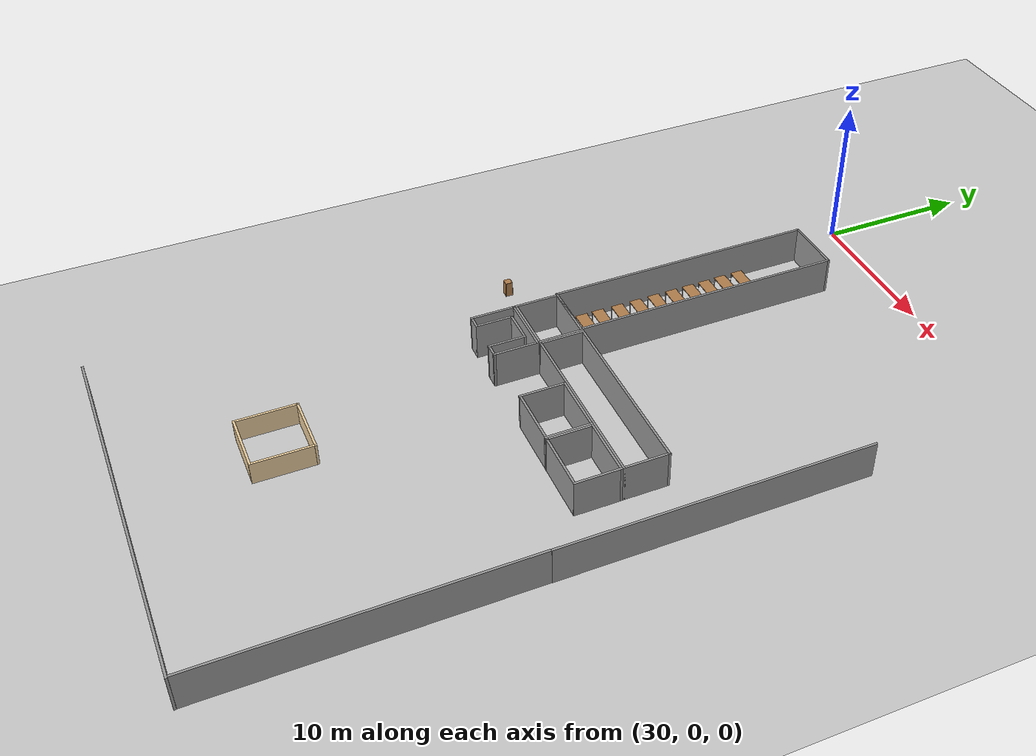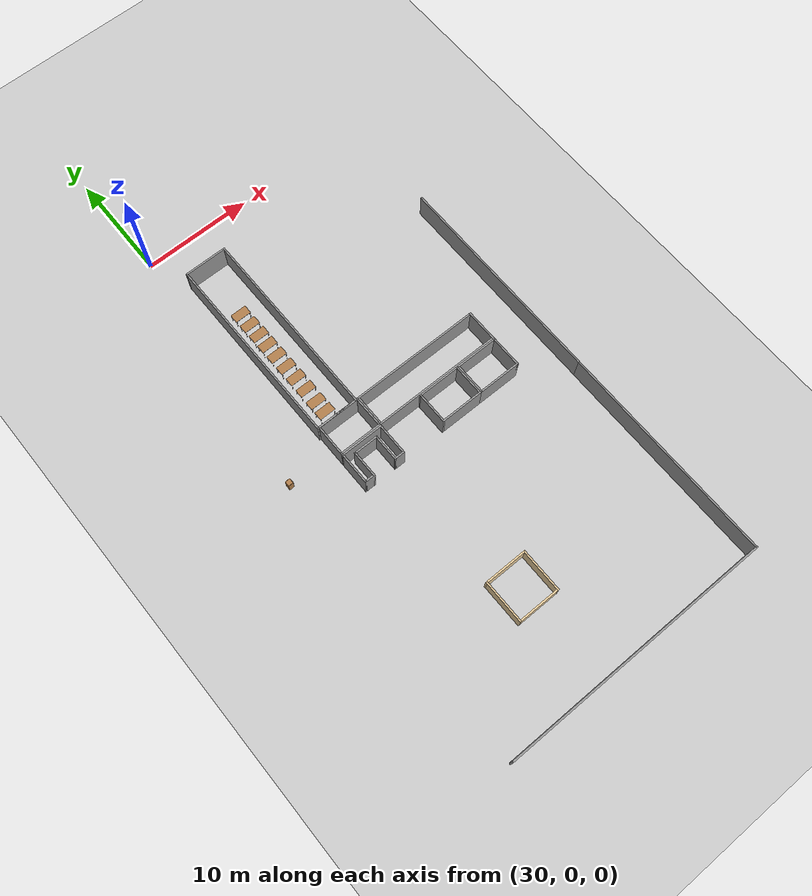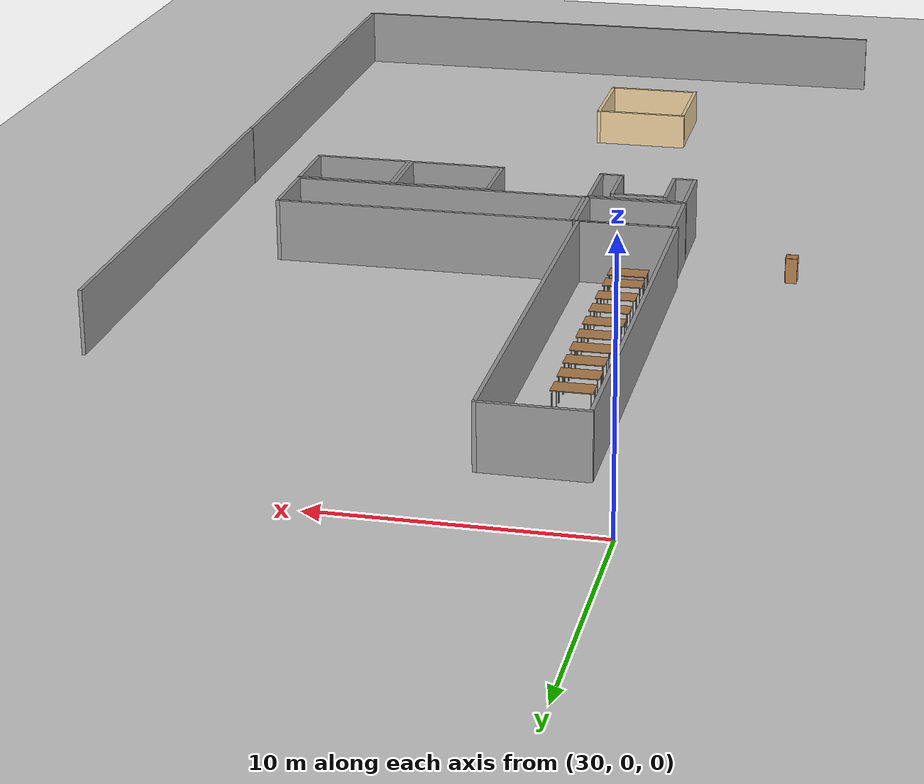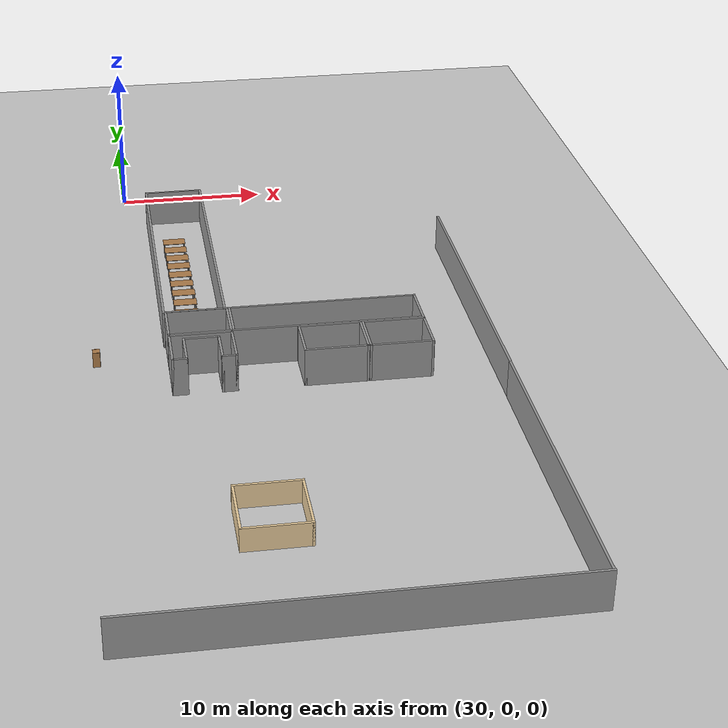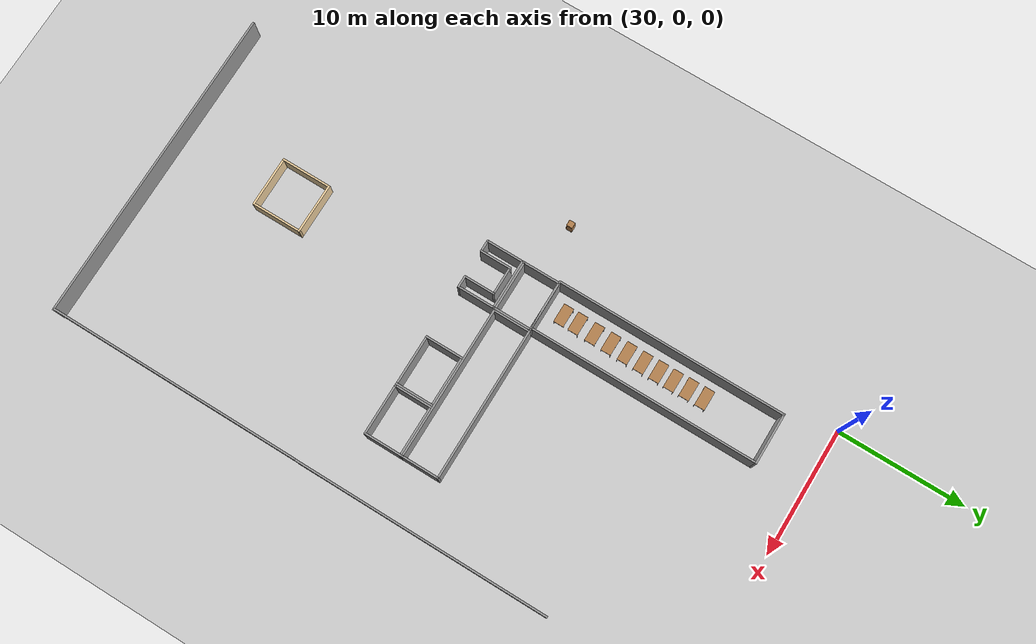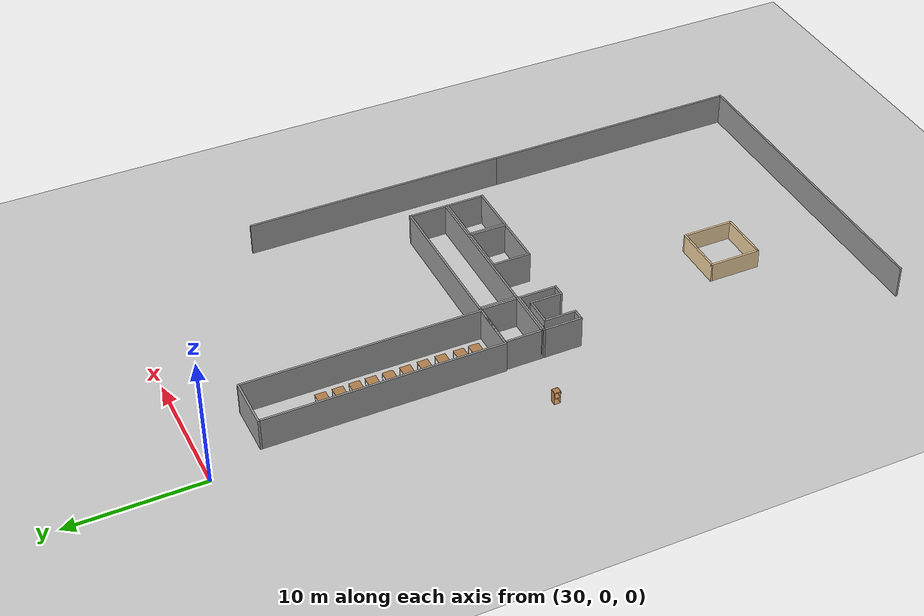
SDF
<sdf version="1.6">
 <world name="default">
  <model name="ground_plane">
   <static>1</static>
   <link name="link">
    <collision name="collision">
     <geometry><plane><normal>0 0 1</normal><size>105 105</size></plane></geometry>
     <surface>
      <contact><collide_bitmask>65535</collide_bitmask></contact>
      <friction><ode><mu>100</mu><mu2>50</mu2></ode></friction>
     </surface>
    </collision>
    <visual name="visual">
     <cast_shadows>0</cast_shadows>
     <geometry><plane><normal>0 0 1</normal><size>105 105</size></plane></geometry>
     <material>
      <script><uri>file://media/materials/scripts/gazebo.material</uri><name>Gazebo/Grey</name></script>
     </material>
    </visual>
   </link>
  </model>
  <model name="wall_v20m_3">
   <pose>51.4198 -20.719 0 0 -0 0</pose>
   <link name="Wall_35">
    <collision name="Wall_35_Collision">
     <geometry><box><size>20 0.15 2.5</size></box></geometry>
     <pose>0 0 1.25 0 -0 0</pose>
    </collision>
    <visual name="Wall_35_Visual">
     <pose>0 0 1.25 0 -0 0</pose>
     <geometry><box><size>20 0.15 2.5</size></box></geometry>
     <material>
      <script><uri>file://media/materials/scripts/gazebo.material</uri><name>Gazebo/Grey</name></script>
      <ambient>1 1 1 1</ambient>
     </material>
     <meta><layer>0</layer></meta>
    </visual>
    <pose>0 -0 0 0 -0 -1.5708</pose>
   </link>
   <static>1</static>
  </model>
  <model name="base3x4_25">
   <pose>33.5003 -23.2296 0 0 -0 0</pose>
   <link name="Wall_18">
    <collision name="Wall_18_Collision">
     <geometry><box><size>3 0.15 2.5</size></box></geometry>
     <pose>0 0 1.25 0 -0 0</pose>
    </collision>
    <visual name="Wall_18_Visual">
     <pose>0 0 1.25 0 -0 0</pose>
     <geometry><box><size>3 0.15 2.5</size></box></geometry>
     <material>
      <script><uri>file://media/materials/scripts/gazebo.material</uri><name>Gazebo/Grey</name></script>
      <ambient>1 1 1 1</ambient>
     </material>
     <meta><layer>0</layer></meta>
    </visual>
    <pose>-1.925 -0 0 0 -0 -1.5708</pose>
   </link>
   <link name="Wall_19">
    <collision name="Wall_19_Collision">
     <geometry><box><size>4 0.15 2.5</size></box></geometry>
     <pose>0 0 1.25 0 -0 0</pose>
    </collision>
    <visual name="Wall_19_Visual">
     <pose>0 0 1.25 0 -0 0</pose>
     <geometry><box><size>4 0.15 2.5</size></box></geometry>
     <material>
      <script><uri>file://media/materials/scripts/gazebo.material</uri><name>Gazebo/Grey</name></script>
      <ambient>1 1 1 1</ambient>
     </material>
     <meta><layer>0</layer></meta>
    </visual>
    <pose>-0 -1.425 0 0 -0 0</pose>
   </link>
   <link name="Wall_20">
    <collision name="Wall_20_Collision">
     <geometry><box><size>3 0.15 2.5</size></box></geometry>
     <pose>0 0 1.25 0 -0 0</pose>
    </collision>
    <visual name="Wall_20_Visual">
     <pose>0 0 1.25 0 -0 0</pose>
     <geometry><box><size>3 0.15 2.5</size></box></geometry>
     <material>
      <script><uri>file://media/materials/scripts/gazebo.material</uri><name>Gazebo/Grey</name></script>
      <ambient>1 1 1 1</ambient>
     </material>
     <meta><layer>0</layer></meta>
    </visual>
    <pose>1.925 -0 0 0 -0 1.5708</pose>
   </link>
   <link name="Wall_21">
    <collision name="Wall_21_Collision">
     <geometry><box><size>4 0.15 2.5</size></box></geometry>
     <pose>0 0 1.25 0 -0 0</pose>
    </collision>
    <visual name="Wall_21_Visual">
     <pose>0 0 1.25 0 -0 0</pose>
     <geometry><box><size>4 0.15 2.5</size></box></geometry>
     <material>
      <script><uri>file://media/materials/scripts/gazebo.material</uri><name>Gazebo/Grey</name></script>
      <ambient>1 1 1 1</ambient>
     </material>
     <meta><layer>0</layer></meta>
    </visual>
    <pose>-0 1.425 0 0 -0 3.14159</pose>
   </link>
   <static>1</static>
  </model>
  <model name="base3x12">
   <pose>41.5026 -23.2294 0 0 -0 0</pose>
   <link name="Wall_0">
    <collision name="Wall_0_Collision">
     <geometry><box><size>3 0.15 2.5</size></box></geometry>
     <pose>0 0 1.25 0 -0 0</pose>
    </collision>
    <visual name="Wall_0_Visual">
     <pose>0 0 1.25 0 -0 0</pose>
     <geometry><box><size>3 0.15 2.5</size></box></geometry>
     <material>
      <script><uri>file://media/materials/scripts/gazebo.material</uri><name>Gazebo/Grey</name></script>
      <ambient>1 1 1 1</ambient>
     </material>
     <meta><layer>0</layer></meta>
    </visual>
    <pose>-5.925 0 0 0 -0 -1.5708</pose>
   </link>
   <link name="Wall_1">
    <collision name="Wall_1_Collision">
     <geometry><box><size>12 0.15 2.5</size></box></geometry>
     <pose>0 0 1.25 0 -0 0</pose>
    </collision>
    <visual name="Wall_1_Visual">
     <pose>0 0 1.25 0 -0 0</pose>
     <geometry><box><size>12 0.15 2.5</size></box></geometry>
     <material>
      <script><uri>file://media/materials/scripts/gazebo.material</uri><name>Gazebo/Grey</name></script>
      <ambient>1 1 1 1</ambient>
     </material>
     <meta><layer>0</layer></meta>
    </visual>
    <pose>0 -1.425 0 0 -0 0</pose>
   </link>
   <link name="Wall_2">
    <collision name="Wall_2_Collision">
     <geometry><box><size>3 0.15 2.5</size></box></geometry>
     <pose>0 0 1.25 0 -0 0</pose>
    </collision>
    <visual name="Wall_2_Visual">
     <pose>0 0 1.25 0 -0 0</pose>
     <geometry><box><size>3 0.15 2.5</size></box></geometry>
     <material>
      <script><uri>file://media/materials/scripts/gazebo.material</uri><name>Gazebo/Grey</name></script>
      <ambient>1 1 1 1</ambient>
     </material>
     <meta><layer>0</layer></meta>
    </visual>
    <pose>5.925 0 0 0 -0 1.5708</pose>
   </link>
   <link name="Wall_3">
    <collision name="Wall_3_Collision">
     <geometry><box><size>12 0.15 2.5</size></box></geometry>
     <pose>0 0 1.25 0 -0 0</pose>
    </collision>
    <visual name="Wall_3_Visual">
     <pose>0 0 1.25 0 -0 0</pose>
     <geometry><box><size>12 0.15 2.5</size></box></geometry>
     <material>
      <script><uri>file://media/materials/scripts/gazebo.material</uri><name>Gazebo/Grey</name></script>
      <ambient>1 1 1 1</ambient>
     </material>
     <meta><layer>0</layer></meta>
    </visual>
    <pose>0 1.425 0 0 -0 3.14159</pose>
   </link>
   <static>1</static>
  </model>
  <model name="base18x4_5">
   <pose>33.3746 -12.8976 0 0 -0 0</pose>
   <link name="Wall_6">
    <collision name="Wall_6_Collision">
     <geometry><box><size>18 0.15 2.5</size></box></geometry>
     <pose>0 0 1.25 0 -0 0</pose>
    </collision>
    <visual name="Wall_6_Visual">
     <pose>0 0 1.25 0 -0 0</pose>
     <geometry><box><size>18 0.15 2.5</size></box></geometry>
     <material>
      <script><uri>file://media/materials/scripts/gazebo.material</uri><name>Gazebo/Grey</name></script>
      <ambient>1 1 1 1</ambient>
     </material>
     <meta><layer>0</layer></meta>
    </visual>
    <pose>-1.925 0 0 0 -0 -1.5708</pose>
   </link>
   <link name="Wall_7">
    <collision name="Wall_7_Collision">
     <geometry><box><size>4 0.15 2.5</size></box></geometry>
     <pose>0 0 1.25 0 -0 0</pose>
    </collision>
    <visual name="Wall_7_Visual">
     <pose>0 0 1.25 0 -0 0</pose>
     <geometry><box><size>4 0.15 2.5</size></box></geometry>
     <material>
      <script><uri>file://media/materials/scripts/gazebo.material</uri><name>Gazebo/Grey</name></script>
      <ambient>1 1 1 1</ambient>
     </material>
     <meta><layer>0</layer></meta>
    </visual>
    <pose>0 -8.925 0 0 -0 0</pose>
   </link>
   <link name="Wall_8">
    <collision name="Wall_8_Collision">
     <geometry><box><size>18 0.15 2.5</size></box></geometry>
     <pose>0 0 1.25 0 -0 0</pose>
    </collision>
    <visual name="Wall_8_Visual">
     <pose>0 0 1.25 0 -0 0</pose>
     <geometry><box><size>18 0.15 2.5</size></box></geometry>
     <material>
      <script><uri>file://media/materials/scripts/gazebo.material</uri><name>Gazebo/Grey</name></script>
      <ambient>1 1 1 1</ambient>
     </material>
     <meta><layer>0</layer></meta>
    </visual>
    <pose>1.925 0 0 0 -0 1.5708</pose>
   </link>
   <link name="Wall_9">
    <collision name="Wall_9_Collision">
     <geometry><box><size>4 0.15 2.5</size></box></geometry>
     <pose>0 0 1.25 0 -0 0</pose>
    </collision>
    <visual name="Wall_9_Visual">
     <pose>0 0 1.25 0 -0 0</pose>
     <geometry><box><size>4 0.15 2.5</size></box></geometry>
     <material>
      <script><uri>file://media/materials/scripts/gazebo.material</uri><name>Gazebo/Grey</name></script>
      <ambient>1 1 1 1</ambient>
     </material>
     <meta><layer>0</layer></meta>
    </visual>
    <pose>0 8.925 0 0 -0 3.14159</pose>
   </link>
   <static>1</static>
  </model>
  <model name="wall_v20m_8">
   <pose>51.4045 -40.7218 0 0 -0 0</pose>
   <link name="Wall_35">
    <collision name="Wall_35_Collision">
     <geometry><box><size>20 0.15 2.5</size></box></geometry>
     <pose>0 0 1.25 0 -0 0</pose>
    </collision>
    <visual name="Wall_35_Visual">
     <pose>0 0 1.25 0 -0 0</pose>
     <geometry><box><size>20 0.15 2.5</size></box></geometry>
     <material>
      <script><uri>file://media/materials/scripts/gazebo.material</uri><name>Gazebo/Grey</name></script>
      <ambient>1 1 1 1</ambient>
     </material>
     <meta><layer>0</layer></meta>
    </visual>
    <pose>0 -0 0 0 -0 -1.5708</pose>
   </link>
   <static>1</static>
  </model>
  <model name="wall_25m_9">
   <pose>39.0197 -50.7168 0 0 -0 0</pose>
   <link name="Wall_28">
    <collision name="Wall_28_Collision">
     <geometry><box><size>25 0.15 2.5</size></box></geometry>
     <pose>0 0 1.25 0 -0 0</pose>
    </collision>
    <visual name="Wall_28_Visual">
     <pose>0 0 1.25 0 -0 0</pose>
     <geometry><box><size>25 0.15 2.5</size></box></geometry>
     <material>
      <script><uri>file://media/materials/scripts/gazebo.material</uri><name>Gazebo/Grey</name></script>
      <ambient>1 1 1 1</ambient>
     </material>
     <meta><layer>0</layer></meta>
    </visual>
   </link>
   <static>1</static>
  </model>
  <model name="table">
   <static>1</static>
   <link name="link">
    <collision name="surface">
     <pose>0 0 1 0 -0 0</pose>
     <geometry><box><size>1.5 0.8 0.03</size></box></geometry>
     <surface><friction><ode><mu>0.6</mu><mu2>0.6</mu2></ode></friction></surface>
    </collision>
    <visual name="visual1">
     <pose>0 0 1 0 -0 0</pose>
     <geometry><box><size>1.5 0.8 0.03</size></box></geometry>
     <material>
      <script><uri>file://media/materials/scripts/gazebo.material</uri><name>Gazebo/Wood</name></script>
     </material>
    </visual>
    <collision name="front_left_leg">
     <pose>0.68 0.38 0.5 0 -0 0</pose>
     <geometry><cylinder><radius>0.02</radius><length>1</length></cylinder></geometry>
    </collision>
    <visual name="front_left_leg">
     <pose>0.68 0.38 0.5 0 -0 0</pose>
     <geometry><cylinder><radius>0.02</radius><length>1</length></cylinder></geometry>
     <material>
      <script><uri>file://media/materials/scripts/gazebo.material</uri><name>Gazebo/Grey</name></script>
     </material>
    </visual>
    <collision name="front_right_leg">
     <pose>0.68 -0.38 0.5 0 -0 0</pose>
     <geometry><cylinder><radius>0.02</radius><length>1</length></cylinder></geometry>
    </collision>
    <visual name="front_right_leg">
     <pose>0.68 -0.38 0.5 0 -0 0</pose>
     <geometry><cylinder><radius>0.02</radius><length>1</length></cylinder></geometry>
     <material>
      <script><uri>file://media/materials/scripts/gazebo.material</uri><name>Gazebo/Grey</name></script>
     </material>
    </visual>
    <collision name="back_right_leg">
     <pose>-0.68 -0.38 0.5 0 -0 0</pose>
     <geometry><cylinder><radius>0.02</radius><length>1</length></cylinder></geometry>
    </collision>
    <visual name="back_right_leg">
     <pose>-0.68 -0.38 0.5 0 -0 0</pose>
     <geometry><cylinder><radius>0.02</radius><length>1</length></cylinder></geometry>
     <material>
      <script><uri>file://media/materials/scripts/gazebo.material</uri><name>Gazebo/Grey</name></script>
     </material>
    </visual>
    <collision name="back_left_leg">
     <pose>-0.68 0.38 0.5 0 -0 0</pose>
     <geometry><cylinder><radius>0.02</radius><length>1</length></cylinder></geometry>
    </collision>
    <visual name="back_left_leg">
     <pose>-0.68 0.38 0.5 0 -0 0</pose>
     <geometry><cylinder><radius>0.02</radius><length>1</length></cylinder></geometry>
     <material>
      <script><uri>file://media/materials/scripts/gazebo.material</uri><name>Gazebo/Grey</name></script>
     </material>
    </visual>
   </link>
   <pose>33.0718 -20.4788 0 0 -0 0</pose>
  </model>
  <model name="table_0">
   <static>1</static>
   <link name="link">
    <collision name="surface">
     <pose>0 0 1 0 -0 0</pose>
     <geometry><box><size>1.5 0.8 0.03</size></box></geometry>
     <surface><friction><ode><mu>0.6</mu><mu2>0.6</mu2></ode></friction></surface>
    </collision>
    <visual name="visual1">
     <pose>0 0 1 0 -0 0</pose>
     <geometry><box><size>1.5 0.8 0.03</size></box></geometry>
     <material>
      <script><uri>file://media/materials/scripts/gazebo.material</uri><name>Gazebo/Wood</name></script>
     </material>
    </visual>
    <collision name="front_left_leg">
     <pose>0.68 0.38 0.5 0 -0 0</pose>
     <geometry><cylinder><radius>0.02</radius><length>1</length></cylinder></geometry>
    </collision>
    <visual name="front_left_leg">
     <pose>0.68 0.38 0.5 0 -0 0</pose>
     <geometry><cylinder><radius>0.02</radius><length>1</length></cylinder></geometry>
     <material>
      <script><uri>file://media/materials/scripts/gazebo.material</uri><name>Gazebo/Grey</name></script>
     </material>
    </visual>
    <collision name="front_right_leg">
     <pose>0.68 -0.38 0.5 0 -0 0</pose>
     <geometry><cylinder><radius>0.02</radius><length>1</length></cylinder></geometry>
    </collision>
    <visual name="front_right_leg">
     <pose>0.68 -0.38 0.5 0 -0 0</pose>
     <geometry><cylinder><radius>0.02</radius><length>1</length></cylinder></geometry>
     <material>
      <script><uri>file://media/materials/scripts/gazebo.material</uri><name>Gazebo/Grey</name></script>
     </material>
    </visual>
    <collision name="back_right_leg">
     <pose>-0.68 -0.38 0.5 0 -0 0</pose>
     <geometry><cylinder><radius>0.02</radius><length>1</length></cylinder></geometry>
    </collision>
    <visual name="back_right_leg">
     <pose>-0.68 -0.38 0.5 0 -0 0</pose>
     <geometry><cylinder><radius>0.02</radius><length>1</length></cylinder></geometry>
     <material>
      <script><uri>file://media/materials/scripts/gazebo.material</uri><name>Gazebo/Grey</name></script>
     </material>
    </visual>
    <collision name="back_left_leg">
     <pose>-0.68 0.38 0.5 0 -0 0</pose>
     <geometry><cylinder><radius>0.02</radius><length>1</length></cylinder></geometry>
    </collision>
    <visual name="back_left_leg">
     <pose>-0.68 0.38 0.5 0 -0 0</pose>
     <geometry><cylinder><radius>0.02</radius><length>1</length></cylinder></geometry>
     <material>
      <script><uri>file://media/materials/scripts/gazebo.material</uri><name>Gazebo/Grey</name></script>
     </material>
    </visual>
   </link>
   <pose>33.0586 -19.3271 0 0 -0 0</pose>
  </model>
  <model name="table_1">
   <static>1</static>
   <link name="link">
    <collision name="surface">
     <pose>0 0 1 0 -0 0</pose>
     <geometry><box><size>1.5 0.8 0.03</size></box></geometry>
     <surface><friction><ode><mu>0.6</mu><mu2>0.6</mu2></ode></friction></surface>
    </collision>
    <visual name="visual1">
     <pose>0 0 1 0 -0 0</pose>
     <geometry><box><size>1.5 0.8 0.03</size></box></geometry>
     <material>
      <script><uri>file://media/materials/scripts/gazebo.material</uri><name>Gazebo/Wood</name></script>
     </material>
    </visual>
    <collision name="front_left_leg">
     <pose>0.68 0.38 0.5 0 -0 0</pose>
     <geometry><cylinder><radius>0.02</radius><length>1</length></cylinder></geometry>
    </collision>
    <visual name="front_left_leg">
     <pose>0.68 0.38 0.5 0 -0 0</pose>
     <geometry><cylinder><radius>0.02</radius><length>1</length></cylinder></geometry>
     <material>
      <script><uri>file://media/materials/scripts/gazebo.material</uri><name>Gazebo/Grey</name></script>
     </material>
    </visual>
    <collision name="front_right_leg">
     <pose>0.68 -0.38 0.5 0 -0 0</pose>
     <geometry><cylinder><radius>0.02</radius><length>1</length></cylinder></geometry>
    </collision>
    <visual name="front_right_leg">
     <pose>0.68 -0.38 0.5 0 -0 0</pose>
     <geometry><cylinder><radius>0.02</radius><length>1</length></cylinder></geometry>
     <material>
      <script><uri>file://media/materials/scripts/gazebo.material</uri><name>Gazebo/Grey</name></script>
     </material>
    </visual>
    <collision name="back_right_leg">
     <pose>-0.68 -0.38 0.5 0 -0 0</pose>
     <geometry><cylinder><radius>0.02</radius><length>1</length></cylinder></geometry>
    </collision>
    <visual name="back_right_leg">
     <pose>-0.68 -0.38 0.5 0 -0 0</pose>
     <geometry><cylinder><radius>0.02</radius><length>1</length></cylinder></geometry>
     <material>
      <script><uri>file://media/materials/scripts/gazebo.material</uri><name>Gazebo/Grey</name></script>
     </material>
    </visual>
    <collision name="back_left_leg">
     <pose>-0.68 0.38 0.5 0 -0 0</pose>
     <geometry><cylinder><radius>0.02</radius><length>1</length></cylinder></geometry>
    </collision>
    <visual name="back_left_leg">
     <pose>-0.68 0.38 0.5 0 -0 0</pose>
     <geometry><cylinder><radius>0.02</radius><length>1</length></cylinder></geometry>
     <material>
      <script><uri>file://media/materials/scripts/gazebo.material</uri><name>Gazebo/Grey</name></script>
     </material>
    </visual>
   </link>
   <pose>33.0783 -17.9476 0 0 -0 0</pose>
  </model>
  <model name="table_2">
   <static>1</static>
   <link name="link">
    <collision name="surface">
     <pose>0 0 1 0 -0 0</pose>
     <geometry><box><size>1.5 0.8 0.03</size></box></geometry>
     <surface><friction><ode><mu>0.6</mu><mu2>0.6</mu2></ode></friction></surface>
    </collision>
    <visual name="visual1">
     <pose>0 0 1 0 -0 0</pose>
     <geometry><box><size>1.5 0.8 0.03</size></box></geometry>
     <material>
      <script><uri>file://media/materials/scripts/gazebo.material</uri><name>Gazebo/Wood</name></script>
     </material>
    </visual>
    <collision name="front_left_leg">
     <pose>0.68 0.38 0.5 0 -0 0</pose>
     <geometry><cylinder><radius>0.02</radius><length>1</length></cylinder></geometry>
    </collision>
    <visual name="front_left_leg">
     <pose>0.68 0.38 0.5 0 -0 0</pose>
     <geometry><cylinder><radius>0.02</radius><length>1</length></cylinder></geometry>
     <material>
      <script><uri>file://media/materials/scripts/gazebo.material</uri><name>Gazebo/Grey</name></script>
     </material>
    </visual>
    <collision name="front_right_leg">
     <pose>0.68 -0.38 0.5 0 -0 0</pose>
     <geometry><cylinder><radius>0.02</radius><length>1</length></cylinder></geometry>
    </collision>
    <visual name="front_right_leg">
     <pose>0.68 -0.38 0.5 0 -0 0</pose>
     <geometry><cylinder><radius>0.02</radius><length>1</length></cylinder></geometry>
     <material>
      <script><uri>file://media/materials/scripts/gazebo.material</uri><name>Gazebo/Grey</name></script>
     </material>
    </visual>
    <collision name="back_right_leg">
     <pose>-0.68 -0.38 0.5 0 -0 0</pose>
     <geometry><cylinder><radius>0.02</radius><length>1</length></cylinder></geometry>
    </collision>
    <visual name="back_right_leg">
     <pose>-0.68 -0.38 0.5 0 -0 0</pose>
     <geometry><cylinder><radius>0.02</radius><length>1</length></cylinder></geometry>
     <material>
      <script><uri>file://media/materials/scripts/gazebo.material</uri><name>Gazebo/Grey</name></script>
     </material>
    </visual>
    <collision name="back_left_leg">
     <pose>-0.68 0.38 0.5 0 -0 0</pose>
     <geometry><cylinder><radius>0.02</radius><length>1</length></cylinder></geometry>
    </collision>
    <visual name="back_left_leg">
     <pose>-0.68 0.38 0.5 0 -0 0</pose>
     <geometry><cylinder><radius>0.02</radius><length>1</length></cylinder></geometry>
     <material>
      <script><uri>file://media/materials/scripts/gazebo.material</uri><name>Gazebo/Grey</name></script>
     </material>
    </visual>
   </link>
   <pose>33.0811 -16.621 0 0 -0 0</pose>
  </model>
  <model name="table_3">
   <static>1</static>
   <link name="link">
    <collision name="surface">
     <pose>0 0 1 0 -0 0</pose>
     <geometry><box><size>1.5 0.8 0.03</size></box></geometry>
     <surface><friction><ode><mu>0.6</mu><mu2>0.6</mu2></ode></friction></surface>
    </collision>
    <visual name="visual1">
     <pose>0 0 1 0 -0 0</pose>
     <geometry><box><size>1.5 0.8 0.03</size></box></geometry>
     <material>
      <script><uri>file://media/materials/scripts/gazebo.material</uri><name>Gazebo/Wood</name></script>
     </material>
    </visual>
    <collision name="front_left_leg">
     <pose>0.68 0.38 0.5 0 -0 0</pose>
     <geometry><cylinder><radius>0.02</radius><length>1</length></cylinder></geometry>
    </collision>
    <visual name="front_left_leg">
     <pose>0.68 0.38 0.5 0 -0 0</pose>
     <geometry><cylinder><radius>0.02</radius><length>1</length></cylinder></geometry>
     <material>
      <script><uri>file://media/materials/scripts/gazebo.material</uri><name>Gazebo/Grey</name></script>
     </material>
    </visual>
    <collision name="front_right_leg">
     <pose>0.68 -0.38 0.5 0 -0 0</pose>
     <geometry><cylinder><radius>0.02</radius><length>1</length></cylinder></geometry>
    </collision>
    <visual name="front_right_leg">
     <pose>0.68 -0.38 0.5 0 -0 0</pose>
     <geometry><cylinder><radius>0.02</radius><length>1</length></cylinder></geometry>
     <material>
      <script><uri>file://media/materials/scripts/gazebo.material</uri><name>Gazebo/Grey</name></script>
     </material>
    </visual>
    <collision name="back_right_leg">
     <pose>-0.68 -0.38 0.5 0 -0 0</pose>
     <geometry><cylinder><radius>0.02</radius><length>1</length></cylinder></geometry>
    </collision>
    <visual name="back_right_leg">
     <pose>-0.68 -0.38 0.5 0 -0 0</pose>
     <geometry><cylinder><radius>0.02</radius><length>1</length></cylinder></geometry>
     <material>
      <script><uri>file://media/materials/scripts/gazebo.material</uri><name>Gazebo/Grey</name></script>
     </material>
    </visual>
    <collision name="back_left_leg">
     <pose>-0.68 0.38 0.5 0 -0 0</pose>
     <geometry><cylinder><radius>0.02</radius><length>1</length></cylinder></geometry>
    </collision>
    <visual name="back_left_leg">
     <pose>-0.68 0.38 0.5 0 -0 0</pose>
     <geometry><cylinder><radius>0.02</radius><length>1</length></cylinder></geometry>
     <material>
      <script><uri>file://media/materials/scripts/gazebo.material</uri><name>Gazebo/Grey</name></script>
     </material>
    </visual>
   </link>
   <pose>33.0661 -15.3115 0 0 -0 0</pose>
  </model>
  <model name="table_4">
   <static>1</static>
   <link name="link">
    <collision name="surface">
     <pose>0 0 1 0 -0 0</pose>
     <geometry><box><size>1.5 0.8 0.03</size></box></geometry>
     <surface><friction><ode><mu>0.6</mu><mu2>0.6</mu2></ode></friction></surface>
    </collision>
    <visual name="visual1">
     <pose>0 0 1 0 -0 0</pose>
     <geometry><box><size>1.5 0.8 0.03</size></box></geometry>
     <material>
      <script><uri>file://media/materials/scripts/gazebo.material</uri><name>Gazebo/Wood</name></script>
     </material>
    </visual>
    <collision name="front_left_leg">
     <pose>0.68 0.38 0.5 0 -0 0</pose>
     <geometry><cylinder><radius>0.02</radius><length>1</length></cylinder></geometry>
    </collision>
    <visual name="front_left_leg">
     <pose>0.68 0.38 0.5 0 -0 0</pose>
     <geometry><cylinder><radius>0.02</radius><length>1</length></cylinder></geometry>
     <material>
      <script><uri>file://media/materials/scripts/gazebo.material</uri><name>Gazebo/Grey</name></script>
     </material>
    </visual>
    <collision name="front_right_leg">
     <pose>0.68 -0.38 0.5 0 -0 0</pose>
     <geometry><cylinder><radius>0.02</radius><length>1</length></cylinder></geometry>
    </collision>
    <visual name="front_right_leg">
     <pose>0.68 -0.38 0.5 0 -0 0</pose>
     <geometry><cylinder><radius>0.02</radius><length>1</length></cylinder></geometry>
     <material>
      <script><uri>file://media/materials/scripts/gazebo.material</uri><name>Gazebo/Grey</name></script>
     </material>
    </visual>
    <collision name="back_right_leg">
     <pose>-0.68 -0.38 0.5 0 -0 0</pose>
     <geometry><cylinder><radius>0.02</radius><length>1</length></cylinder></geometry>
    </collision>
    <visual name="back_right_leg">
     <pose>-0.68 -0.38 0.5 0 -0 0</pose>
     <geometry><cylinder><radius>0.02</radius><length>1</length></cylinder></geometry>
     <material>
      <script><uri>file://media/materials/scripts/gazebo.material</uri><name>Gazebo/Grey</name></script>
     </material>
    </visual>
    <collision name="back_left_leg">
     <pose>-0.68 0.38 0.5 0 -0 0</pose>
     <geometry><cylinder><radius>0.02</radius><length>1</length></cylinder></geometry>
    </collision>
    <visual name="back_left_leg">
     <pose>-0.68 0.38 0.5 0 -0 0</pose>
     <geometry><cylinder><radius>0.02</radius><length>1</length></cylinder></geometry>
     <material>
      <script><uri>file://media/materials/scripts/gazebo.material</uri><name>Gazebo/Grey</name></script>
     </material>
    </visual>
   </link>
   <pose>33.068 -14.0197 0 0 -0 0</pose>
  </model>
  <model name="table_5">
   <static>1</static>
   <link name="link">
    <collision name="surface">
     <pose>0 0 1 0 -0 0</pose>
     <geometry><box><size>1.5 0.8 0.03</size></box></geometry>
     <surface><friction><ode><mu>0.6</mu><mu2>0.6</mu2></ode></friction></surface>
    </collision>
    <visual name="visual1">
     <pose>0 0 1 0 -0 0</pose>
     <geometry><box><size>1.5 0.8 0.03</size></box></geometry>
     <material>
      <script><uri>file://media/materials/scripts/gazebo.material</uri><name>Gazebo/Wood</name></script>
     </material>
    </visual>
    <collision name="front_left_leg">
     <pose>0.68 0.38 0.5 0 -0 0</pose>
     <geometry><cylinder><radius>0.02</radius><length>1</length></cylinder></geometry>
    </collision>
    <visual name="front_left_leg">
     <pose>0.68 0.38 0.5 0 -0 0</pose>
     <geometry><cylinder><radius>0.02</radius><length>1</length></cylinder></geometry>
     <material>
      <script><uri>file://media/materials/scripts/gazebo.material</uri><name>Gazebo/Grey</name></script>
     </material>
    </visual>
    <collision name="front_right_leg">
     <pose>0.68 -0.38 0.5 0 -0 0</pose>
     <geometry><cylinder><radius>0.02</radius><length>1</length></cylinder></geometry>
    </collision>
    <visual name="front_right_leg">
     <pose>0.68 -0.38 0.5 0 -0 0</pose>
     <geometry><cylinder><radius>0.02</radius><length>1</length></cylinder></geometry>
     <material>
      <script><uri>file://media/materials/scripts/gazebo.material</uri><name>Gazebo/Grey</name></script>
     </material>
    </visual>
    <collision name="back_right_leg">
     <pose>-0.68 -0.38 0.5 0 -0 0</pose>
     <geometry><cylinder><radius>0.02</radius><length>1</length></cylinder></geometry>
    </collision>
    <visual name="back_right_leg">
     <pose>-0.68 -0.38 0.5 0 -0 0</pose>
     <geometry><cylinder><radius>0.02</radius><length>1</length></cylinder></geometry>
     <material>
      <script><uri>file://media/materials/scripts/gazebo.material</uri><name>Gazebo/Grey</name></script>
     </material>
    </visual>
    <collision name="back_left_leg">
     <pose>-0.68 0.38 0.5 0 -0 0</pose>
     <geometry><cylinder><radius>0.02</radius><length>1</length></cylinder></geometry>
    </collision>
    <visual name="back_left_leg">
     <pose>-0.68 0.38 0.5 0 -0 0</pose>
     <geometry><cylinder><radius>0.02</radius><length>1</length></cylinder></geometry>
     <material>
      <script><uri>file://media/materials/scripts/gazebo.material</uri><name>Gazebo/Grey</name></script>
     </material>
    </visual>
   </link>
   <pose>33.0548 -12.7631 0 0 -0 0</pose>
  </model>
  <model name="table_6">
   <static>1</static>
   <link name="link">
    <collision name="surface">
     <pose>0 0 1 0 -0 0</pose>
     <geometry><box><size>1.5 0.8 0.03</size></box></geometry>
     <surface><friction><ode><mu>0.6</mu><mu2>0.6</mu2></ode></friction></surface>
    </collision>
    <visual name="visual1">
     <pose>0 0 1 0 -0 0</pose>
     <geometry><box><size>1.5 0.8 0.03</size></box></geometry>
     <material>
      <script><uri>file://media/materials/scripts/gazebo.material</uri><name>Gazebo/Wood</name></script>
     </material>
    </visual>
    <collision name="front_left_leg">
     <pose>0.68 0.38 0.5 0 -0 0</pose>
     <geometry><cylinder><radius>0.02</radius><length>1</length></cylinder></geometry>
    </collision>
    <visual name="front_left_leg">
     <pose>0.68 0.38 0.5 0 -0 0</pose>
     <geometry><cylinder><radius>0.02</radius><length>1</length></cylinder></geometry>
     <material>
      <script><uri>file://media/materials/scripts/gazebo.material</uri><name>Gazebo/Grey</name></script>
     </material>
    </visual>
    <collision name="front_right_leg">
     <pose>0.68 -0.38 0.5 0 -0 0</pose>
     <geometry><cylinder><radius>0.02</radius><length>1</length></cylinder></geometry>
    </collision>
    <visual name="front_right_leg">
     <pose>0.68 -0.38 0.5 0 -0 0</pose>
     <geometry><cylinder><radius>0.02</radius><length>1</length></cylinder></geometry>
     <material>
      <script><uri>file://media/materials/scripts/gazebo.material</uri><name>Gazebo/Grey</name></script>
     </material>
    </visual>
    <collision name="back_right_leg">
     <pose>-0.68 -0.38 0.5 0 -0 0</pose>
     <geometry><cylinder><radius>0.02</radius><length>1</length></cylinder></geometry>
    </collision>
    <visual name="back_right_leg">
     <pose>-0.68 -0.38 0.5 0 -0 0</pose>
     <geometry><cylinder><radius>0.02</radius><length>1</length></cylinder></geometry>
     <material>
      <script><uri>file://media/materials/scripts/gazebo.material</uri><name>Gazebo/Grey</name></script>
     </material>
    </visual>
    <collision name="back_left_leg">
     <pose>-0.68 0.38 0.5 0 -0 0</pose>
     <geometry><cylinder><radius>0.02</radius><length>1</length></cylinder></geometry>
    </collision>
    <visual name="back_left_leg">
     <pose>-0.68 0.38 0.5 0 -0 0</pose>
     <geometry><cylinder><radius>0.02</radius><length>1</length></cylinder></geometry>
     <material>
      <script><uri>file://media/materials/scripts/gazebo.material</uri><name>Gazebo/Grey</name></script>
     </material>
    </visual>
   </link>
   <pose>33.0586 -11.5759 0 0 -0 0</pose>
  </model>
  <model name="table_7">
   <static>1</static>
   <link name="link">
    <collision name="surface">
     <pose>0 0 1 0 -0 0</pose>
     <geometry><box><size>1.5 0.8 0.03</size></box></geometry>
     <surface><friction><ode><mu>0.6</mu><mu2>0.6</mu2></ode></friction></surface>
    </collision>
    <visual name="visual1">
     <pose>0 0 1 0 -0 0</pose>
     <geometry><box><size>1.5 0.8 0.03</size></box></geometry>
     <material>
      <script><uri>file://media/materials/scripts/gazebo.material</uri><name>Gazebo/Wood</name></script>
     </material>
    </visual>
    <collision name="front_left_leg">
     <pose>0.68 0.38 0.5 0 -0 0</pose>
     <geometry><cylinder><radius>0.02</radius><length>1</length></cylinder></geometry>
    </collision>
    <visual name="front_left_leg">
     <pose>0.68 0.38 0.5 0 -0 0</pose>
     <geometry><cylinder><radius>0.02</radius><length>1</length></cylinder></geometry>
     <material>
      <script><uri>file://media/materials/scripts/gazebo.material</uri><name>Gazebo/Grey</name></script>
     </material>
    </visual>
    <collision name="front_right_leg">
     <pose>0.68 -0.38 0.5 0 -0 0</pose>
     <geometry><cylinder><radius>0.02</radius><length>1</length></cylinder></geometry>
    </collision>
    <visual name="front_right_leg">
     <pose>0.68 -0.38 0.5 0 -0 0</pose>
     <geometry><cylinder><radius>0.02</radius><length>1</length></cylinder></geometry>
     <material>
      <script><uri>file://media/materials/scripts/gazebo.material</uri><name>Gazebo/Grey</name></script>
     </material>
    </visual>
    <collision name="back_right_leg">
     <pose>-0.68 -0.38 0.5 0 -0 0</pose>
     <geometry><cylinder><radius>0.02</radius><length>1</length></cylinder></geometry>
    </collision>
    <visual name="back_right_leg">
     <pose>-0.68 -0.38 0.5 0 -0 0</pose>
     <geometry><cylinder><radius>0.02</radius><length>1</length></cylinder></geometry>
     <material>
      <script><uri>file://media/materials/scripts/gazebo.material</uri><name>Gazebo/Grey</name></script>
     </material>
    </visual>
    <collision name="back_left_leg">
     <pose>-0.68 0.38 0.5 0 -0 0</pose>
     <geometry><cylinder><radius>0.02</radius><length>1</length></cylinder></geometry>
    </collision>
    <visual name="back_left_leg">
     <pose>-0.68 0.38 0.5 0 -0 0</pose>
     <geometry><cylinder><radius>0.02</radius><length>1</length></cylinder></geometry>
     <material>
      <script><uri>file://media/materials/scripts/gazebo.material</uri><name>Gazebo/Grey</name></script>
     </material>
    </visual>
   </link>
   <pose>33.0266 -10.3543 0 0 -0 0</pose>
  </model>
  <model name="table_8">
   <static>1</static>
   <link name="link">
    <collision name="surface">
     <pose>0 0 1 0 -0 0</pose>
     <geometry><box><size>1.5 0.8 0.03</size></box></geometry>
     <surface><friction><ode><mu>0.6</mu><mu2>0.6</mu2></ode></friction></surface>
    </collision>
    <visual name="visual1">
     <pose>0 0 1 0 -0 0</pose>
     <geometry><box><size>1.5 0.8 0.03</size></box></geometry>
     <material>
      <script><uri>file://media/materials/scripts/gazebo.material</uri><name>Gazebo/Wood</name></script>
     </material>
    </visual>
    <collision name="front_left_leg">
     <pose>0.68 0.38 0.5 0 -0 0</pose>
     <geometry><cylinder><radius>0.02</radius><length>1</length></cylinder></geometry>
    </collision>
    <visual name="front_left_leg">
     <pose>0.68 0.38 0.5 0 -0 0</pose>
     <geometry><cylinder><radius>0.02</radius><length>1</length></cylinder></geometry>
     <material>
      <script><uri>file://media/materials/scripts/gazebo.material</uri><name>Gazebo/Grey</name></script>
     </material>
    </visual>
    <collision name="front_right_leg">
     <pose>0.68 -0.38 0.5 0 -0 0</pose>
     <geometry><cylinder><radius>0.02</radius><length>1</length></cylinder></geometry>
    </collision>
    <visual name="front_right_leg">
     <pose>0.68 -0.38 0.5 0 -0 0</pose>
     <geometry><cylinder><radius>0.02</radius><length>1</length></cylinder></geometry>
     <material>
      <script><uri>file://media/materials/scripts/gazebo.material</uri><name>Gazebo/Grey</name></script>
     </material>
    </visual>
    <collision name="back_right_leg">
     <pose>-0.68 -0.38 0.5 0 -0 0</pose>
     <geometry><cylinder><radius>0.02</radius><length>1</length></cylinder></geometry>
    </collision>
    <visual name="back_right_leg">
     <pose>-0.68 -0.38 0.5 0 -0 0</pose>
     <geometry><cylinder><radius>0.02</radius><length>1</length></cylinder></geometry>
     <material>
      <script><uri>file://media/materials/scripts/gazebo.material</uri><name>Gazebo/Grey</name></script>
     </material>
    </visual>
    <collision name="back_left_leg">
     <pose>-0.68 0.38 0.5 0 -0 0</pose>
     <geometry><cylinder><radius>0.02</radius><length>1</length></cylinder></geometry>
    </collision>
    <visual name="back_left_leg">
     <pose>-0.68 0.38 0.5 0 -0 0</pose>
     <geometry><cylinder><radius>0.02</radius><length>1</length></cylinder></geometry>
     <material>
      <script><uri>file://media/materials/scripts/gazebo.material</uri><name>Gazebo/Grey</name></script>
     </material>
    </visual>
   </link>
   <pose>33.0125 -9.09753 0 0 -0 0</pose>
  </model>
  <model name="cabinet_4">
   <static>1</static>
   <link name="cabinet_bottom_plate">
    <inertial>
     <pose>0 0 -1 0 -0 0</pose>
     <inertia><ixx>2.05</ixx><ixy>0</ixy><ixz>0</ixz><iyy>2.05</iyy><iyz>0</iyz><izz>2.05</izz></inertia>
     <mass>25</mass>
    </inertial>
    <collision name="cabinet_bottom_plate_geom">
     <pose>0 0 0.01 0 -0 0</pose>
     <geometry><box><size>0.45 0.45 0.02</size></box></geometry>
    </collision>
    <visual name="cabinet_bottom_plate_geom_visual">
     <pose>0 0 0.01 0 -0 0</pose>
     <geometry><box><size>0.45 0.45 0.02</size></box></geometry>
     <material>
      <script><uri>file://media/materials/scripts/gazebo.material</uri><name>Gazebo/Wood</name></script>
     </material>
    </visual>
    <collision name="cabinet_bottom_plate_geom_cabinet_back_plate">
     <pose>0.235 0 0.51 0 -0 0</pose>
     <geometry><box><size>0.02 0.45 1.02</size></box></geometry>
    </collision>
    <visual name="cabinet_bottom_plate_geom_cabinet_back_plate_visual">
     <pose>0.235 0 0.51 0 -0 0</pose>
     <geometry><box><size>0.02 0.45 1.02</size></box></geometry>
     <material>
      <script><uri>file://media/materials/scripts/gazebo.material</uri><name>Gazebo/Wood</name></script>
     </material>
    </visual>
    <collision name="cabinet_bottom_plate_geom_cabinet_left_plate">
     <pose>0 0.235 0.51 0 -0 0</pose>
     <geometry><box><size>0.45 0.02 1.02</size></box></geometry>
    </collision>
    <visual name="cabinet_bottom_plate_geom_cabinet_left_plate_visual">
     <pose>0 0.235 0.51 0 -0 0</pose>
     <geometry><box><size>0.45 0.02 1.02</size></box></geometry>
     <material>
      <script><uri>file://media/materials/scripts/gazebo.material</uri><name>Gazebo/Wood</name></script>
     </material>
    </visual>
    <collision name="cabinet_bottom_plate_geom_cabinet_middle_plate">
     <pose>0 0 0.51 0 -0 0</pose>
     <geometry><box><size>0.45 0.45 0.02</size></box></geometry>
    </collision>
    <visual name="cabinet_bottom_plate_geom_cabinet_middle_plate_visual">
     <pose>0 0 0.51 0 -0 0</pose>
     <geometry><box><size>0.45 0.45 0.02</size></box></geometry>
     <material>
      <script><uri>file://media/materials/scripts/gazebo.material</uri><name>Gazebo/Wood</name></script>
     </material>
    </visual>
    <collision name="cabinet_bottom_plate_geom_cabinet_right_plate">
     <pose>0 -0.235 0.51 0 -0 0</pose>
     <geometry><box><size>0.45 0.02 1.02</size></box></geometry>
    </collision>
    <visual name="cabinet_bottom_plate_geom_cabinet_right_plate_visual">
     <pose>0 -0.235 0.51 0 -0 0</pose>
     <geometry><box><size>0.45 0.02 1.02</size></box></geometry>
     <material>
      <script><uri>file://media/materials/scripts/gazebo.material</uri><name>Gazebo/Wood</name></script>
     </material>
    </visual>
    <collision name="cabinet_bottom_plate_geom_cabinet_top_plate">
     <pose>0 0 1.01 0 -0 0</pose>
     <geometry><box><size>0.45 0.45 0.02</size></box></geometry>
    </collision>
    <visual name="cabinet_bottom_plate_geom_cabinet_top_plate_visual">
     <pose>0 0 1.01 0 -0 0</pose>
     <geometry><box><size>0.45 0.45 0.02</size></box></geometry>
     <material>
      <script><uri>file://media/materials/scripts/gazebo.material</uri><name>Gazebo/Wood</name></script>
     </material>
    </visual>
   </link>
   <pose>27.1129 -23.4747 0 0 -0 0</pose>
  </model>
  <model name="box4x4x1.5_3">
   <pose>35.7872 -41.5085 0 0 -0 0</pose>
   <link name="Wall_5">
    <collision name="Wall_5_Collision">
     <geometry><box><size>4 0.15 1.5</size></box></geometry>
     <pose>0 0 0.75 0 -0 0</pose>
    </collision>
    <visual name="Wall_5_Visual">
     <pose>0 0 0.75 0 -0 0</pose>
     <geometry><box><size>4 0.15 1.5</size></box></geometry>
     <material>
      <script><uri>file://media/materials/scripts/gazebo.material</uri><name>Gazebo/Grey</name></script>
      <ambient>0.921569 0.807843 0.615686 1</ambient>
     </material>
     <meta><layer>0</layer></meta>
    </visual>
    <pose>-1.925 -0 0 0 -0 -1.5708</pose>
   </link>
   <link name="Wall_6">
    <collision name="Wall_6_Collision">
     <geometry><box><size>4 0.15 1.5</size></box></geometry>
     <pose>0 0 0.75 0 -0 0</pose>
    </collision>
    <visual name="Wall_6_Visual">
     <pose>0 0 0.75 0 -0 0</pose>
     <geometry><box><size>4 0.15 1.5</size></box></geometry>
     <material>
      <script><uri>file://media/materials/scripts/gazebo.material</uri><name>Gazebo/Grey</name></script>
      <ambient>0.921569 0.807843 0.615686 1</ambient>
     </material>
     <meta><layer>0</layer></meta>
    </visual>
    <pose>0 -1.925 0 0 -0 0</pose>
   </link>
   <link name="Wall_7">
    <collision name="Wall_7_Collision">
     <geometry><box><size>4 0.15 1.5</size></box></geometry>
     <pose>0 0 0.75 0 -0 0</pose>
    </collision>
    <visual name="Wall_7_Visual">
     <pose>0 0 0.75 0 -0 0</pose>
     <geometry><box><size>4 0.15 1.5</size></box></geometry>
     <material>
      <script><uri>file://media/materials/scripts/gazebo.material</uri><name>Gazebo/Grey</name></script>
      <ambient>0.921569 0.807843 0.615686 1</ambient>
     </material>
     <meta><layer>0</layer></meta>
    </visual>
    <pose>1.925 -0 0 0 -0 1.5708</pose>
   </link>
   <link name="Wall_8">
    <collision name="Wall_8_Collision">
     <geometry><box><size>4 0.15 1.5</size></box></geometry>
     <pose>0 0 0.75 0 -0 0</pose>
    </collision>
    <visual name="Wall_8_Visual">
     <pose>0 0 0.75 0 -0 0</pose>
     <geometry><box><size>4 0.15 1.5</size></box></geometry>
     <material>
      <script><uri>file://media/materials/scripts/gazebo.material</uri><name>Gazebo/Grey</name></script>
      <ambient>0.921569 0.807843 0.615686 1</ambient>
     </material>
     <meta><layer>0</layer></meta>
    </visual>
    <pose>0 1.925 0 0 -0 3.14159</pose>
   </link>
   <static>1</static>
  </model>
  <model name="base3x4_9">
   <pose>45.5083 -26.2198 0 0 -0 0</pose>
   <link name="Wall_18">
    <collision name="Wall_18_Collision">
     <geometry><box><size>3 0.15 2.5</size></box></geometry>
     <pose>0 0 1.25 0 -0 0</pose>
    </collision>
    <visual name="Wall_18_Visual">
     <pose>0 0 1.25 0 -0 0</pose>
     <geometry><box><size>3 0.15 2.5</size></box></geometry>
     <material>
      <script><uri>file://media/materials/scripts/gazebo.material</uri><name>Gazebo/Grey</name></script>
      <ambient>1 1 1 1</ambient>
     </material>
     <meta><layer>0</layer></meta>
    </visual>
    <pose>-1.925 -0 0 0 -0 -1.5708</pose>
   </link>
   <link name="Wall_19">
    <collision name="Wall_19_Collision">
     <geometry><box><size>4 0.15 2.5</size></box></geometry>
     <pose>0 0 1.25 0 -0 0</pose>
    </collision>
    <visual name="Wall_19_Visual">
     <pose>0 0 1.25 0 -0 0</pose>
     <geometry><box><size>4 0.15 2.5</size></box></geometry>
     <material>
      <script><uri>file://media/materials/scripts/gazebo.material</uri><name>Gazebo/Grey</name></script>
      <ambient>1 1 1 1</ambient>
     </material>
     <meta><layer>0</layer></meta>
    </visual>
    <pose>-0 -1.425 0 0 -0 0</pose>
   </link>
   <link name="Wall_20">
    <collision name="Wall_20_Collision">
     <geometry><box><size>3 0.15 2.5</size></box></geometry>
     <pose>0 0 1.25 0 -0 0</pose>
    </collision>
    <visual name="Wall_20_Visual">
     <pose>0 0 1.25 0 -0 0</pose>
     <geometry><box><size>3 0.15 2.5</size></box></geometry>
     <material>
      <script><uri>file://media/materials/scripts/gazebo.material</uri><name>Gazebo/Grey</name></script>
      <ambient>1 1 1 1</ambient>
     </material>
     <meta><layer>0</layer></meta>
    </visual>
    <pose>1.925 -0 0 0 -0 1.5708</pose>
   </link>
   <link name="Wall_21">
    <collision name="Wall_21_Collision">
     <geometry><box><size>4 0.15 2.5</size></box></geometry>
     <pose>0 0 1.25 0 -0 0</pose>
    </collision>
    <visual name="Wall_21_Visual">
     <pose>0 0 1.25 0 -0 0</pose>
     <geometry><box><size>4 0.15 2.5</size></box></geometry>
     <material>
      <script><uri>file://media/materials/scripts/gazebo.material</uri><name>Gazebo/Grey</name></script>
      <ambient>1 1 1 1</ambient>
     </material>
     <meta><layer>0</layer></meta>
    </visual>
    <pose>-0 1.425 0 0 -0 3.14159</pose>
   </link>
   <static>1</static>
  </model>
  <model name="base3x4_12">
   <pose>41.5115 -26.2157 0 0 -0 0</pose>
   <link name="Wall_18">
    <collision name="Wall_18_Collision">
     <geometry><box><size>3 0.15 2.5</size></box></geometry>
     <pose>0 0 1.25 0 -0 0</pose>
    </collision>
    <visual name="Wall_18_Visual">
     <pose>0 0 1.25 0 -0 0</pose>
     <geometry><box><size>3 0.15 2.5</size></box></geometry>
     <material>
      <script><uri>file://media/materials/scripts/gazebo.material</uri><name>Gazebo/Grey</name></script>
      <ambient>1 1 1 1</ambient>
     </material>
     <meta><layer>0</layer></meta>
    </visual>
    <pose>-1.925 -0 0 0 -0 -1.5708</pose>
   </link>
   <link name="Wall_19">
    <collision name="Wall_19_Collision">
     <geometry><box><size>4 0.15 2.5</size></box></geometry>
     <pose>0 0 1.25 0 -0 0</pose>
    </collision>
    <visual name="Wall_19_Visual">
     <pose>0 0 1.25 0 -0 0</pose>
     <geometry><box><size>4 0.15 2.5</size></box></geometry>
     <material>
      <script><uri>file://media/materials/scripts/gazebo.material</uri><name>Gazebo/Grey</name></script>
      <ambient>1 1 1 1</ambient>
     </material>
     <meta><layer>0</layer></meta>
    </visual>
    <pose>-0 -1.425 0 0 -0 0</pose>
   </link>
   <link name="Wall_20">
    <collision name="Wall_20_Collision">
     <geometry><box><size>3 0.15 2.5</size></box></geometry>
     <pose>0 0 1.25 0 -0 0</pose>
    </collision>
    <visual name="Wall_20_Visual">
     <pose>0 0 1.25 0 -0 0</pose>
     <geometry><box><size>3 0.15 2.5</size></box></geometry>
     <material>
      <script><uri>file://media/materials/scripts/gazebo.material</uri><name>Gazebo/Grey</name></script>
      <ambient>1 1 1 1</ambient>
     </material>
     <meta><layer>0</layer></meta>
    </visual>
    <pose>1.925 -0 0 0 -0 1.5708</pose>
   </link>
   <link name="Wall_21">
    <collision name="Wall_21_Collision">
     <geometry><box><size>4 0.15 2.5</size></box></geometry>
     <pose>0 0 1.25 0 -0 0</pose>
    </collision>
    <visual name="Wall_21_Visual">
     <pose>0 0 1.25 0 -0 0</pose>
     <geometry><box><size>4 0.15 2.5</size></box></geometry>
     <material>
      <script><uri>file://media/materials/scripts/gazebo.material</uri><name>Gazebo/Grey</name></script>
      <ambient>1 1 1 1</ambient>
     </material>
     <meta><layer>0</layer></meta>
    </visual>
    <pose>-0 1.425 0 0 -0 3.14159</pose>
   </link>
   <static>1</static>
  </model>
  <model name="box_u_v4X3X2.5_8">
   <pose>33.5067 -26.2251 0 0 -0 0</pose>
   <link name="Wall_30">
    <collision name="Wall_30_Collision">
     <geometry><box><size>3 0.15 2.5</size></box></geometry>
     <pose>0 0 1.25 0 -0 0</pose>
    </collision>
    <visual name="Wall_30_Visual">
     <pose>0 0 1.25 0 -0 0</pose>
     <geometry><box><size>3 0.15 2.5</size></box></geometry>
     <material>
      <script><uri>file://media/materials/scripts/gazebo.material</uri><name>Gazebo/Grey</name></script>
      <ambient>1 1 1 1</ambient>
     </material>
     <meta><layer>0</layer></meta>
    </visual>
    <pose>-1.925 0 0 0 -0 -1.5708</pose>
   </link>
   <link name="Wall_32">
    <collision name="Wall_32_Collision">
     <geometry><box><size>4 0.15 2.5</size></box></geometry>
     <pose>0 0 1.25 0 -0 0</pose>
    </collision>
    <visual name="Wall_32_Visual">
     <pose>0 0 1.25 0 -0 0</pose>
     <geometry><box><size>4 0.15 2.5</size></box></geometry>
     <material>
      <script><uri>file://media/materials/scripts/gazebo.material</uri><name>Gazebo/Grey</name></script>
      <ambient>1 1 1 1</ambient>
     </material>
     <meta><layer>0</layer></meta>
    </visual>
    <pose>0 1.425 0 0 -0 0</pose>
   </link>
   <link name="Wall_33">
    <collision name="Wall_33_Collision">
     <geometry><box><size>3 0.15 2.5</size></box></geometry>
     <pose>0 0 1.25 0 -0 0</pose>
    </collision>
    <visual name="Wall_33_Visual">
     <pose>0 0 1.25 0 -0 0</pose>
     <geometry><box><size>3 0.15 2.5</size></box></geometry>
     <material>
      <script><uri>file://media/materials/scripts/gazebo.material</uri><name>Gazebo/Grey</name></script>
      <ambient>1 1 1 1</ambient>
     </material>
     <meta><layer>0</layer></meta>
    </visual>
    <pose>1.925 0 0 0 -0 -1.5708</pose>
   </link>
   <link name="Wall_34">
    <collision name="Wall_34_Collision">
     <geometry><box><size>1 0.15 2.5</size></box></geometry>
     <pose>0 0 1.25 0 -0 0</pose>
    </collision>
    <visual name="Wall_34_Visual">
     <pose>0 0 1.25 0 -0 0</pose>
     <geometry><box><size>1 0.15 2.5</size></box></geometry>
     <material>
      <script><uri>file://media/materials/scripts/gazebo.material</uri><name>Gazebo/Grey</name></script>
      <ambient>1 1 1 1</ambient>
     </material>
     <meta><layer>0</layer></meta>
    </visual>
    <pose>1.5 -1.425 0 0 -0 3.14159</pose>
   </link>
   <link name="Wall_35">
    <collision name="Wall_35_Collision">
     <geometry><box><size>2.5 0.15 2.5</size></box></geometry>
     <pose>0 0 1.25 0 -0 0</pose>
    </collision>
    <visual name="Wall_35_Visual">
     <pose>0 0 1.25 0 -0 0</pose>
     <geometry><box><size>2.5 0.15 2.5</size></box></geometry>
     <material>
      <script><uri>file://media/materials/scripts/gazebo.material</uri><name>Gazebo/Grey</name></script>
      <ambient>1 1 1 1</ambient>
     </material>
     <meta><layer>0</layer></meta>
    </visual>
    <pose>1.075 -0.25 0 0 -0 1.5708</pose>
   </link>
   <link name="Wall_37">
    <collision name="Wall_37_Collision">
     <geometry><box><size>1 0.15 2.5</size></box></geometry>
     <pose>0 0 1.25 0 -0 0</pose>
    </collision>
    <visual name="Wall_37_Visual">
     <pose>0 0 1.25 0 -0 0</pose>
     <geometry><box><size>1 0.15 2.5</size></box></geometry>
     <material>
      <script><uri>file://media/materials/scripts/gazebo.material</uri><name>Gazebo/Grey</name></script>
      <ambient>1 1 1 1</ambient>
     </material>
     <meta><layer>0</layer></meta>
    </visual>
    <pose>-1.5 -1.425 0 0 -0 0</pose>
   </link>
   <link name="Wall_38">
    <collision name="Wall_38_Collision">
     <geometry><box><size>2.5 0.15 2.5</size></box></geometry>
     <pose>0 0 1.25 0 -0 0</pose>
    </collision>
    <visual name="Wall_38_Visual">
     <pose>0 0 1.25 0 -0 0</pose>
     <geometry><box><size>2.5 0.15 2.5</size></box></geometry>
     <material>
      <script><uri>file://media/materials/scripts/gazebo.material</uri><name>Gazebo/Grey</name></script>
      <ambient>1 1 1 1</ambient>
     </material>
     <meta><layer>0</layer></meta>
    </visual>
    <pose>-1.075 -0.25 0 0 -0 1.5708</pose>
   </link>
   <link name="Wall_39">
    <collision name="Wall_39_Collision">
     <geometry><box><size>2.3 0.15 2.5</size></box></geometry>
     <pose>0 0 1.25 0 -0 0</pose>
    </collision>
    <visual name="Wall_39_Visual">
     <pose>0 0 1.25 0 -0 0</pose>
     <geometry><box><size>2.3 0.15 2.5</size></box></geometry>
     <material>
      <script><uri>file://media/materials/scripts/gazebo.material</uri><name>Gazebo/Grey</name></script>
      <ambient>1 1 1 1</ambient>
     </material>
     <meta><layer>0</layer></meta>
    </visual>
    <pose>0 0.925 0 0 -0 0</pose>
   </link>
   <static>1</static>
  </model>
 </world>
</sdf>
